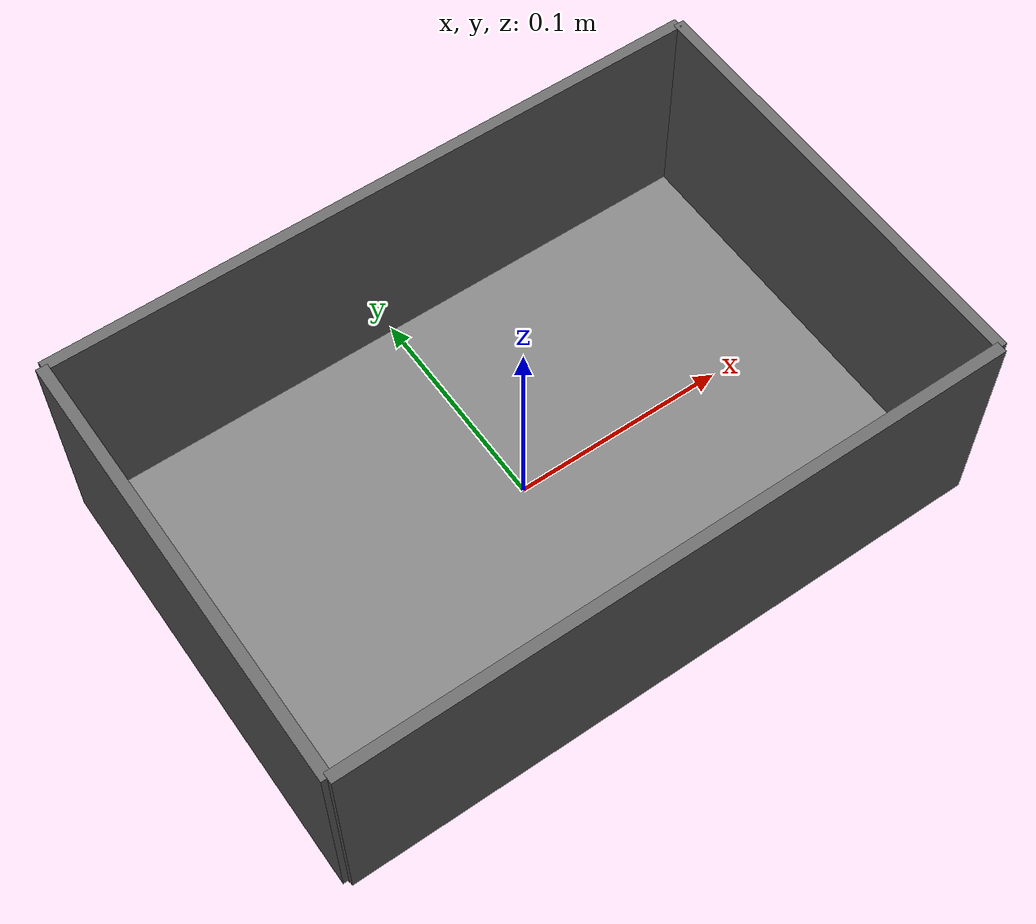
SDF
<?xml version="1.0"?>
<sdf version="1.6">
  <model name="bin">
    <static>true</static>
    <!-- Floor -->
    <link name="floor">
      <collision name="collision">
        <geometry><box><size>0.30 0.20 0.005</size></box></geometry>
      </collision>
      <visual name="visual">
        <geometry><box><size>0.30 0.20 0.005</size></box></geometry>
        <material><ambient>0.5 0.5 0.5 1</ambient></material>
      </visual>
    </link>
    <!-- Front wall -->
    <link name="front_wall">
      <pose>0 -0.1 0.05 0 0 0</pose>
      <collision name="collision">
        <geometry><box><size>0.30 0.005 0.10</size></box></geometry>
      </collision>
      <visual name="visual">
        <geometry><box><size>0.30 0.005 0.10</size></box></geometry>
        <material><ambient>0.4 0.4 0.4 1</ambient></material>
      </visual>
    </link>
    <!-- Back wall -->
    <link name="back_wall">
      <pose>0 0.1 0.05 0 0 0</pose>
      <collision name="collision">
        <geometry><box><size>0.30 0.005 0.10</size></box></geometry>
      </collision>
      <visual name="visual">
        <geometry><box><size>0.30 0.005 0.10</size></box></geometry>
        <material><ambient>0.4 0.4 0.4 1</ambient></material>
      </visual>
    </link>
    <!-- Left wall -->
    <link name="left_wall">
      <pose>-0.15 0 0.05 0 0 0</pose>
      <collision name="collision">
        <geometry><box><size>0.005 0.20 0.10</size></box></geometry>
      </collision>
      <visual name="visual">
        <geometry><box><size>0.005 0.20 0.10</size></box></geometry>
        <material><ambient>0.4 0.4 0.4 1</ambient></material>
      </visual>
    </link>
    <!-- Right wall -->
    <link name="right_wall">
      <pose>0.15 0 0.05 0 0 0</pose>
      <collision name="collision">
        <geometry><box><size>0.005 0.20 0.10</size></box></geometry>
      </collision>
      <visual name="visual">
        <geometry><box><size>0.005 0.20 0.10</size></box></geometry>
        <material><ambient>0.4 0.4 0.4 1</ambient></material>
      </visual>
    </link>
  </model>
</sdf>
